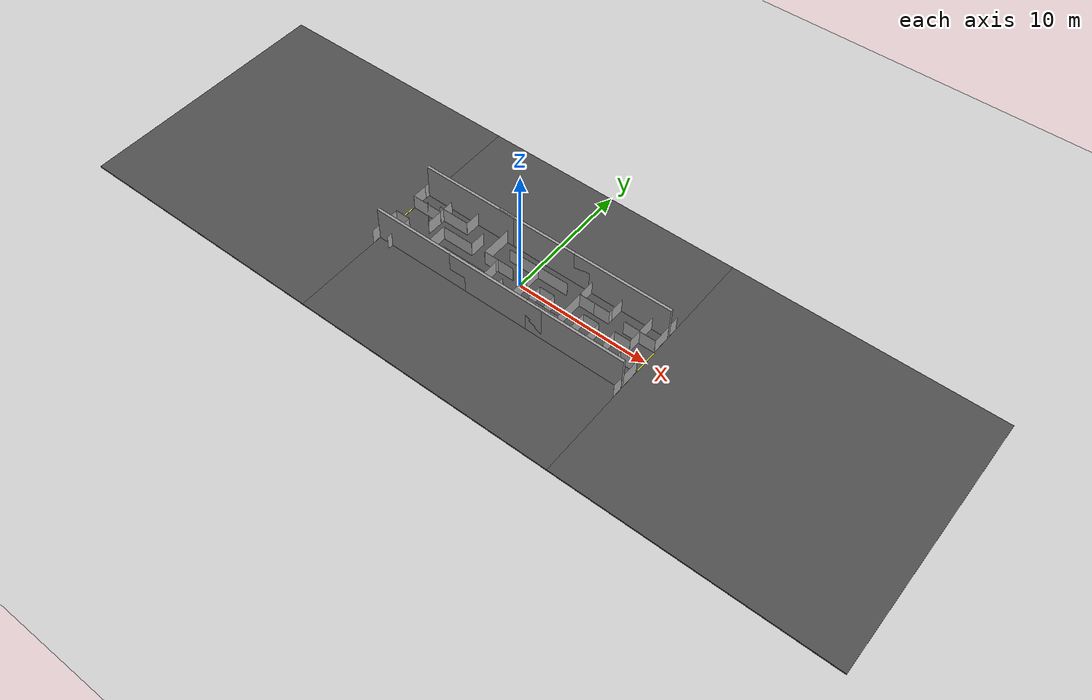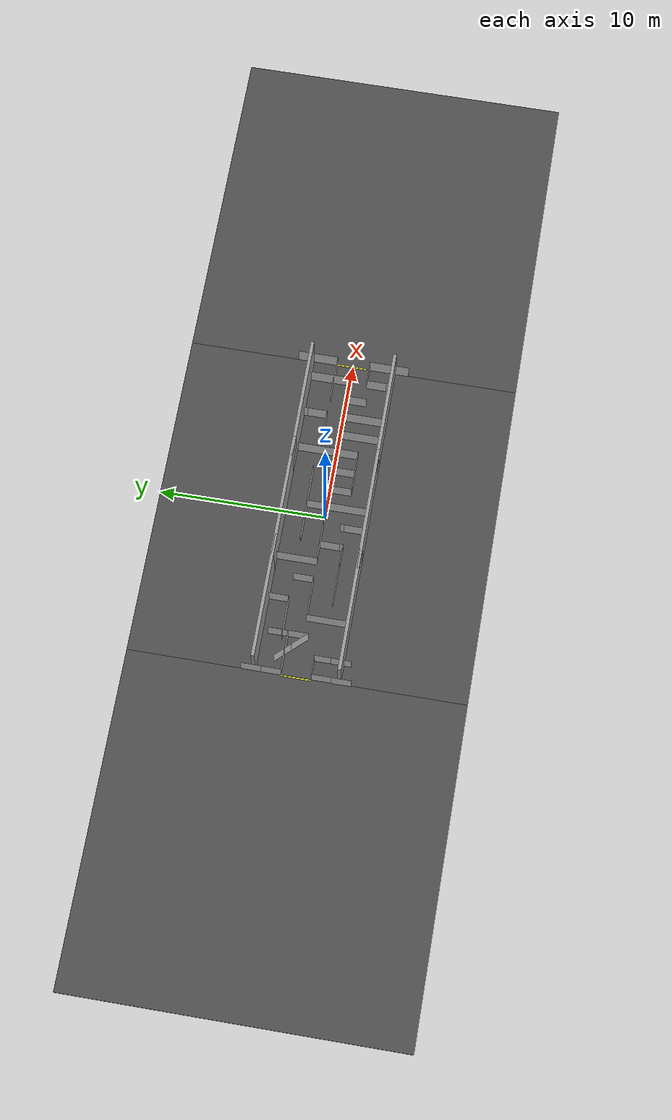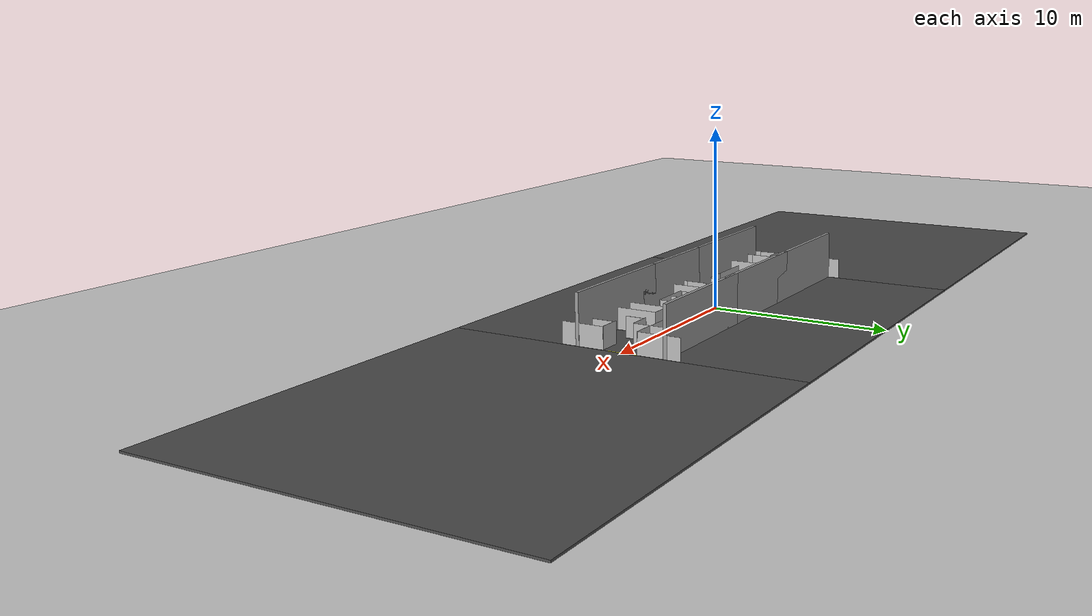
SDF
<sdf version="1.6">
 <world name="default">
  <light name="sun" type="directional">
   <pose>0 0 10 0 -0 0</pose>
   <diffuse>0.8 0.8 0.8 1</diffuse>
   <specular>0.1 0.1 0.1 1</specular>
   <attenuation>
    <range>1000</range>
    <constant>0.9</constant>
    <linear>0.01</linear>
    <quadratic>0.001</quadratic>
   </attenuation>
   <direction>-0.5 0.5 -1</direction>
  </light>
  <model name="ground_plane">
   <static>1</static>
   <link name="link">
    <collision name="collision">
     <geometry><plane><normal>0 0 1</normal><size>100 100</size></plane></geometry>
     <surface><friction><ode><mu>100</mu><mu2>50</mu2></ode></friction></surface>
    </collision>
    <visual name="visual">
     <cast_shadows>0</cast_shadows>
     <geometry><plane><normal>0 0 1</normal><size>100 100</size></plane></geometry>
     <material>
      <script><uri>file://media/materials/scripts/gazebo.material</uri><name>Gazebo/Grey</name></script>
     </material>
    </visual>
   </link>
  </model>
  <gravity>0 0 -9.8</gravity>
  <magnetic_field>6e-06 2.3e-05 -4.2e-05</magnetic_field>
  <atmosphere type="adiabatic"/>
  <physics name="default_physics" default="0" type="ode">
   <max_step_size>0.001</max_step_size>
   <real_time_factor>1</real_time_factor>
   <real_time_update_rate>1000</real_time_update_rate>
  </physics>
  <scene><ambient>0.4 0.4 0.4 1</ambient><background>0.7 0.7 0.7 1</background><shadows>1</shadows></scene>
  <spherical_coordinates>
   <surface_model>EARTH_WGS84</surface_model>
   <latitude_deg>0</latitude_deg>
   <longitude_deg>0</longitude_deg>
   <elevation>0</elevation>
   <heading_deg>0</heading_deg>
  </spherical_coordinates>
  <model name="asphalt_plane">
   <static>1</static>
   <link name="link">
    <collision name="collision"><geometry><box><size>20 20 0.1</size></box></geometry></collision>
    <visual name="visual">
     <cast_shadows>0</cast_shadows>
     <geometry><box><size>20 20 0.1</size></box></geometry>
     <material>
      <script>
       <uri>model://asphalt_plane/materials/scripts</uri>
       <uri>model://asphalt_plane/materials/textures</uri>
       <name>vrc/asphalt</name>
      </script>
     </material>
    </visual>
   </link>
  </model>
  <model name="grey_wall">
   <static>1</static>
   <link name="link">
    <pose>0 0 1.4 0 -0 0</pose>
    <collision name="collision"><geometry><box><size>7.5 0.2 2.8</size></box></geometry></collision>
    <visual name="visual">
     <cast_shadows>0</cast_shadows>
     <geometry><box><size>7.5 0.2 2.8</size></box></geometry>
     <material>
      <script>
       <uri>model://grey_wall/materials/scripts</uri>
       <uri>model://grey_wall/materials/textures</uri>
       <name>vrc/grey_wall</name>
      </script>
     </material>
    </visual>
   </link>
   <pose>-6.25 2.5 0 0 -0 0</pose>
  </model>
  <model name="grey_wall_clone">
   <static>1</static>
   <link name="link">
    <pose>0 0 1.4 0 -0 0</pose>
    <collision name="collision"><geometry><box><size>7.5 0.2 2.8</size></box></geometry></collision>
    <visual name="visual">
     <cast_shadows>0</cast_shadows>
     <geometry><box><size>7.5 0.2 2.8</size></box></geometry>
     <material>
      <script>
       <uri>model://grey_wall/materials/scripts</uri>
       <uri>model://grey_wall/materials/textures</uri>
       <name>vrc/grey_wall</name>
      </script>
     </material>
    </visual>
   </link>
   <pose>0 2.5 0 0 -0 0</pose>
  </model>
  <model name="grey_wall_clone_0">
   <static>1</static>
   <link name="link">
    <pose>0 0 1.4 0 -0 0</pose>
    <collision name="collision"><geometry><box><size>7.5 0.2 2.8</size></box></geometry></collision>
    <visual name="visual">
     <cast_shadows>0</cast_shadows>
     <geometry><box><size>7.5 0.2 2.8</size></box></geometry>
     <material>
      <script>
       <uri>model://grey_wall/materials/scripts</uri>
       <uri>model://grey_wall/materials/textures</uri>
       <name>vrc/grey_wall</name>
      </script>
     </material>
    </visual>
   </link>
   <pose>-6.25 -2.5 0 0 -0 0</pose>
  </model>
  <model name="grey_wall_clone_1">
   <static>1</static>
   <link name="link">
    <pose>0 0 1.4 0 -0 0</pose>
    <collision name="collision"><geometry><box><size>7.5 0.2 2.8</size></box></geometry></collision>
    <visual name="visual">
     <cast_shadows>0</cast_shadows>
     <geometry><box><size>7.5 0.2 2.8</size></box></geometry>
     <material>
      <script>
       <uri>model://grey_wall/materials/scripts</uri>
       <uri>model://grey_wall/materials/textures</uri>
       <name>vrc/grey_wall</name>
      </script>
     </material>
    </visual>
   </link>
   <pose>6.25 2.5 0 0 -0 0</pose>
  </model>
  <model name="grey_wall_clone_2">
   <static>1</static>
   <link name="link">
    <pose>0 0 1.4 0 -0 0</pose>
    <collision name="collision"><geometry><box><size>7.5 0.2 2.8</size></box></geometry></collision>
    <visual name="visual">
     <cast_shadows>0</cast_shadows>
     <geometry><box><size>7.5 0.2 2.8</size></box></geometry>
     <material>
      <script>
       <uri>model://grey_wall/materials/scripts</uri>
       <uri>model://grey_wall/materials/textures</uri>
       <name>vrc/grey_wall</name>
      </script>
     </material>
    </visual>
   </link>
   <pose>0 -2.5 0 0 -0 0</pose>
  </model>
  <model name="grey_wall_clone_3">
   <static>1</static>
   <link name="link">
    <pose>0 0 1.4 0 -0 0</pose>
    <collision name="collision"><geometry><box><size>7.5 0.2 2.8</size></box></geometry></collision>
    <visual name="visual">
     <cast_shadows>0</cast_shadows>
     <geometry><box><size>7.5 0.2 2.8</size></box></geometry>
     <material>
      <script>
       <uri>model://grey_wall/materials/scripts</uri>
       <uri>model://grey_wall/materials/textures</uri>
       <name>vrc/grey_wall</name>
      </script>
     </material>
    </visual>
   </link>
   <pose>6.25 -2.5 0 0 -0 0</pose>
  </model>
  <model name="asphalt_plane_clone">
   <static>1</static>
   <link name="link">
    <collision name="collision"><geometry><box><size>20 20 0.1</size></box></geometry></collision>
    <visual name="visual">
     <cast_shadows>0</cast_shadows>
     <geometry><box><size>20 20 0.1</size></box></geometry>
     <material>
      <script>
       <uri>model://asphalt_plane/materials/scripts</uri>
       <uri>model://asphalt_plane/materials/textures</uri>
       <name>vrc/asphalt</name>
      </script>
     </material>
    </visual>
   </link>
   <pose>-20 0 0 0 -0 0</pose>
  </model>
  <model name="asphalt_plane_clone_0">
   <static>1</static>
   <link name="link">
    <collision name="collision"><geometry><box><size>20 20 0.1</size></box></geometry></collision>
    <visual name="visual">
     <cast_shadows>0</cast_shadows>
     <geometry><box><size>20 20 0.1</size></box></geometry>
     <material>
      <script>
       <uri>model://asphalt_plane/materials/scripts</uri>
       <uri>model://asphalt_plane/materials/textures</uri>
       <name>vrc/asphalt</name>
      </script>
     </material>
    </visual>
   </link>
   <pose>20 0 0 0 -0 0</pose>
  </model>
  <model name="drc_practice_yellow_parking_block">
   <static>1</static>
   <link name="link">
    <visual name="visual">
     <geometry>
      <mesh><uri>model://drc_practice_yellow_parking_block/meshes/block.dae</uri><scale>1 1 1</scale></mesh>
     </geometry>
    </visual>
    <collision name="collision">
     <geometry>
      <mesh><uri>model://drc_practice_yellow_parking_block/meshes/block.dae</uri><scale>1 1 1</scale></mesh>
     </geometry>
    </collision>
   </link>
   <pose>-10.0634 0.022013 -0.051452 0 -0 0</pose>
  </model>
  <model name="drc_practice_yellow_parking_block_clone">
   <static>1</static>
   <link name="link">
    <visual name="visual">
     <geometry>
      <mesh><uri>model://drc_practice_yellow_parking_block/meshes/block.dae</uri><scale>1 1 1</scale></mesh>
     </geometry>
    </visual>
    <collision name="collision">
     <geometry>
      <mesh><uri>model://drc_practice_yellow_parking_block/meshes/block.dae</uri><scale>1 1 1</scale></mesh>
     </geometry>
    </collision>
   </link>
   <pose>10 0.079134 -0.051452 0 -0 0</pose>
  </model>
  <model name="nist_maze_wall_240_clone">
   <static>1</static>
   <link name="nist__maze_wall_240_link">
    <collision name="collision">
     <geometry>
      <mesh><uri>model://nist_maze_wall_240/meshes/nist_maze_wall_240.dae</uri><scale>1 1 1</scale></mesh>
     </geometry>
    </collision>
    <visual name="visual">
     <geometry>
      <mesh><uri>model://nist_maze_wall_240/meshes/nist_maze_wall_240.dae</uri><scale>1 1 1</scale></mesh>
     </geometry>
    </visual>
   </link>
   <pose>9.35922 0.000936 0.65 0.000361 1.57 1.57036</pose>
  </model>
  <model name="nist_maze_wall_120_clone_0">
   <static>1</static>
   <link name="nist_maze_wall_120_link">
    <collision name="collision">
     <geometry>
      <mesh><uri>model://nist_maze_wall_120/meshes/nist_maze_wall_120.dae</uri><scale>1 1 1</scale></mesh>
     </geometry>
    </collision>
    <visual name="visual">
     <geometry>
      <mesh><uri>model://nist_maze_wall_120/meshes/nist_maze_wall_120.dae</uri><scale>1 1 1</scale></mesh>
     </geometry>
    </visual>
   </link>
   <pose>8.15337 -0.609718 0.055 0 -0 0</pose>
  </model>
  <model name="nist_maze_wall_240_clone_clone_0">
   <static>1</static>
   <link name="nist__maze_wall_240_link">
    <collision name="collision">
     <geometry>
      <mesh><uri>model://nist_maze_wall_240/meshes/nist_maze_wall_240.dae</uri><scale>1 1 1</scale></mesh>
     </geometry>
    </collision>
    <visual name="visual">
     <geometry>
      <mesh><uri>model://nist_maze_wall_240/meshes/nist_maze_wall_240.dae</uri><scale>1 1 1</scale></mesh>
     </geometry>
    </visual>
   </link>
   <pose>6.99991 -2.50286 0.649912 0.000404 1.57 1.57039</pose>
  </model>
  <model name="nist_maze_wall_120_clone_clone">
   <static>1</static>
   <link name="nist_maze_wall_120_link">
    <collision name="collision">
     <geometry>
      <mesh><uri>model://nist_maze_wall_120/meshes/nist_maze_wall_120.dae</uri><scale>1 1 1</scale></mesh>
     </geometry>
    </collision>
    <visual name="visual">
     <geometry>
      <mesh><uri>model://nist_maze_wall_120/meshes/nist_maze_wall_120.dae</uri><scale>1 1 1</scale></mesh>
     </geometry>
    </visual>
   </link>
   <pose>6.99451 1.61609 0 0 -0 1.57</pose>
  </model>
  <model name="nist_maze_wall_120_clone_clone_clone">
   <static>1</static>
   <link name="nist_maze_wall_120_link">
    <collision name="collision">
     <geometry>
      <mesh><uri>model://nist_maze_wall_120/meshes/nist_maze_wall_120.dae</uri><scale>1 1 1</scale></mesh>
     </geometry>
    </collision>
    <visual name="visual">
     <geometry>
      <mesh><uri>model://nist_maze_wall_120/meshes/nist_maze_wall_120.dae</uri><scale>1 1 1</scale></mesh>
     </geometry>
    </visual>
   </link>
   <pose>6.99609 1.92363 0 0 -0 1.57</pose>
  </model>
  <model name="nist_maze_wall_120_clone_0_clone">
   <static>1</static>
   <link name="nist_maze_wall_120_link">
    <collision name="collision">
     <geometry>
      <mesh><uri>model://nist_maze_wall_120/meshes/nist_maze_wall_120.dae</uri><scale>1 1 1</scale></mesh>
     </geometry>
    </collision>
    <visual name="visual">
     <geometry>
      <mesh><uri>model://nist_maze_wall_120/meshes/nist_maze_wall_120.dae</uri><scale>1 1 1</scale></mesh>
     </geometry>
    </visual>
   </link>
   <pose>8.14106 0.401155 0.055 0 -0 0</pose>
  </model>
  <model name="nist_maze_wall_120_clone_0_clone_clone">
   <static>1</static>
   <link name="nist_maze_wall_120_link">
    <collision name="collision">
     <geometry>
      <mesh><uri>model://nist_maze_wall_120/meshes/nist_maze_wall_120.dae</uri><scale>1 1 1</scale></mesh>
     </geometry>
    </collision>
    <visual name="visual">
     <geometry>
      <mesh><uri>model://nist_maze_wall_120/meshes/nist_maze_wall_120.dae</uri><scale>1 1 1</scale></mesh>
     </geometry>
    </visual>
   </link>
   <pose>5.80906 0.421371 0.055 0 -0 0</pose>
  </model>
  <model name="nist_maze_wall_120_clone_0_clone_clone_0">
   <static>1</static>
   <link name="nist_maze_wall_120_link">
    <collision name="collision">
     <geometry>
      <mesh><uri>model://nist_maze_wall_120/meshes/nist_maze_wall_120.dae</uri><scale>1 1 1</scale></mesh>
     </geometry>
    </collision>
    <visual name="visual">
     <geometry>
      <mesh><uri>model://nist_maze_wall_120/meshes/nist_maze_wall_120.dae</uri><scale>1 1 1</scale></mesh>
     </geometry>
    </visual>
   </link>
   <pose>5.81728 -0.718374 0.055 0 -0 0</pose>
  </model>
  <model name="nist_maze_wall_120_clone_0_clone_clone_1">
   <static>1</static>
   <link name="nist_maze_wall_120_link">
    <collision name="collision">
     <geometry>
      <mesh><uri>model://nist_maze_wall_120/meshes/nist_maze_wall_120.dae</uri><scale>1 1 1</scale></mesh>
     </geometry>
    </collision>
    <visual name="visual">
     <geometry>
      <mesh><uri>model://nist_maze_wall_120/meshes/nist_maze_wall_120.dae</uri><scale>1 1 1</scale></mesh>
     </geometry>
    </visual>
   </link>
   <pose>4.63983 0.43488 0.055 0 -0 0</pose>
  </model>
  <model name="nist_maze_wall_240_clone_clone_clone_0">
   <static>1</static>
   <link name="nist__maze_wall_240_link">
    <collision name="collision">
     <geometry>
      <mesh><uri>model://nist_maze_wall_240/meshes/nist_maze_wall_240.dae</uri><scale>1 1 1</scale></mesh>
     </geometry>
    </collision>
    <visual name="visual">
     <geometry>
      <mesh><uri>model://nist_maze_wall_240/meshes/nist_maze_wall_240.dae</uri><scale>1 1 1</scale></mesh>
     </geometry>
    </visual>
   </link>
   <pose>4.63861 -0.037915 0.65 0.000404 1.57 1.57039</pose>
  </model>
  <model name="nist_maze_wall_240_clone_clone_0_clone">
   <static>1</static>
   <link name="nist__maze_wall_240_link">
    <collision name="collision">
     <geometry>
      <mesh><uri>model://nist_maze_wall_240/meshes/nist_maze_wall_240.dae</uri><scale>1 1 1</scale></mesh>
     </geometry>
    </collision>
    <visual name="visual">
     <geometry>
      <mesh><uri>model://nist_maze_wall_240/meshes/nist_maze_wall_240.dae</uri><scale>1 1 1</scale></mesh>
     </geometry>
    </visual>
   </link>
   <pose>4.63853 -1.24114 0.65024 0.000405 1.57 1.57039</pose>
  </model>
  <model name="nist_maze_wall_240_clone_0">
   <static>1</static>
   <link name="nist__maze_wall_240_link">
    <collision name="collision">
     <geometry>
      <mesh><uri>model://nist_maze_wall_240/meshes/nist_maze_wall_240.dae</uri><scale>1 1 1</scale></mesh>
     </geometry>
    </collision>
    <visual name="visual">
     <geometry>
      <mesh><uri>model://nist_maze_wall_240/meshes/nist_maze_wall_240.dae</uri><scale>1 1 1</scale></mesh>
     </geometry>
    </visual>
   </link>
   <pose>1.65175 -1.86535 0.65 0.000398 1.57 0</pose>
  </model>
  <model name="nist_maze_wall_120_clone_clone_clone_0">
   <static>1</static>
   <link name="nist_maze_wall_120_link">
    <collision name="collision">
     <geometry>
      <mesh><uri>model://nist_maze_wall_120/meshes/nist_maze_wall_120.dae</uri><scale>1 1 1</scale></mesh>
     </geometry>
    </collision>
    <visual name="visual">
     <geometry>
      <mesh><uri>model://nist_maze_wall_120/meshes/nist_maze_wall_120.dae</uri><scale>1 1 1</scale></mesh>
     </geometry>
    </visual>
   </link>
   <pose>2.24393 -0.66111 0 0 -0 1.57</pose>
  </model>
  <model name="nist_maze_wall_240_clone_clone_0_clone_clone">
   <static>1</static>
   <link name="nist__maze_wall_240_link">
    <collision name="collision">
     <geometry>
      <mesh><uri>model://nist_maze_wall_240/meshes/nist_maze_wall_240.dae</uri><scale>1 1 1</scale></mesh>
     </geometry>
    </collision>
    <visual name="visual">
     <geometry>
      <mesh><uri>model://nist_maze_wall_240/meshes/nist_maze_wall_240.dae</uri><scale>1 1 1</scale></mesh>
     </geometry>
    </visual>
   </link>
   <pose>1.12882 -2.38546 0.65 0.000405 1.57 1.57039</pose>
  </model>
  <model name="nist_maze_wall_120_clone_0_clone_clone_2">
   <static>1</static>
   <link name="nist_maze_wall_120_link">
    <collision name="collision">
     <geometry>
      <mesh><uri>model://nist_maze_wall_120/meshes/nist_maze_wall_120.dae</uri><scale>1 1 1</scale></mesh>
     </geometry>
    </collision>
    <visual name="visual">
     <geometry>
      <mesh><uri>model://nist_maze_wall_120/meshes/nist_maze_wall_120.dae</uri><scale>1 1 1</scale></mesh>
     </geometry>
    </visual>
   </link>
   <pose>2.25121 -0.678284 0.055 0 -0 0</pose>
  </model>
  <model name="nist_maze_wall_120_clone_clone_clone_1">
   <static>1</static>
   <link name="nist_maze_wall_120_link">
    <collision name="collision">
     <geometry>
      <mesh><uri>model://nist_maze_wall_120/meshes/nist_maze_wall_120.dae</uri><scale>1 1 1</scale></mesh>
     </geometry>
    </collision>
    <visual name="visual">
     <geometry>
      <mesh><uri>model://nist_maze_wall_120/meshes/nist_maze_wall_120.dae</uri><scale>1 1 1</scale></mesh>
     </geometry>
    </visual>
   </link>
   <pose>3.44507 -0.679232 0 0 -0 1.57</pose>
  </model>
  <model name="nist_maze_wall_120_clone_clone_clone_1_clone">
   <static>1</static>
   <link name="nist_maze_wall_120_link">
    <collision name="collision">
     <geometry>
      <mesh><uri>model://nist_maze_wall_120/meshes/nist_maze_wall_120.dae</uri><scale>1 1 1</scale></mesh>
     </geometry>
    </collision>
    <visual name="visual">
     <geometry>
      <mesh><uri>model://nist_maze_wall_120/meshes/nist_maze_wall_120.dae</uri><scale>1 1 1</scale></mesh>
     </geometry>
    </visual>
   </link>
   <pose>1.11557 0.620994 0 0 -0 1.57</pose>
  </model>
  <model name="nist_maze_wall_240_clone_0_clone">
   <static>1</static>
   <link name="nist__maze_wall_240_link">
    <collision name="collision">
     <geometry>
      <mesh><uri>model://nist_maze_wall_240/meshes/nist_maze_wall_240.dae</uri><scale>1 1 1</scale></mesh>
     </geometry>
    </collision>
    <visual name="visual">
     <geometry>
      <mesh><uri>model://nist_maze_wall_240/meshes/nist_maze_wall_240.dae</uri><scale>1 1 1</scale></mesh>
     </geometry>
    </visual>
   </link>
   <pose>0.497182 0.620194 0.649969 0.000398 1.57 0</pose>
  </model>
  <model name="nist_maze_wall_240_clone_0_clone_clone">
   <static>1</static>
   <link name="nist__maze_wall_240_link">
    <collision name="collision">
     <geometry>
      <mesh><uri>model://nist_maze_wall_240/meshes/nist_maze_wall_240.dae</uri><scale>1 1 1</scale></mesh>
     </geometry>
    </collision>
    <visual name="visual">
     <geometry>
      <mesh><uri>model://nist_maze_wall_240/meshes/nist_maze_wall_240.dae</uri><scale>1 1 1</scale></mesh>
     </geometry>
    </visual>
   </link>
   <pose>-1.84178 0.603694 0.649969 0.000398 1.57 0</pose>
  </model>
  <model name="nist_maze_wall_240_clone_clone_0_clone_clone_clone">
   <static>1</static>
   <link name="nist__maze_wall_240_link">
    <collision name="collision">
     <geometry>
      <mesh><uri>model://nist_maze_wall_240/meshes/nist_maze_wall_240.dae</uri><scale>1 1 1</scale></mesh>
     </geometry>
    </collision>
    <visual name="visual">
     <geometry>
      <mesh><uri>model://nist_maze_wall_240/meshes/nist_maze_wall_240.dae</uri><scale>1 1 1</scale></mesh>
     </geometry>
    </visual>
   </link>
   <pose>-2.40412 -0.001311 0.65 0.000405 1.57 1.57039</pose>
  </model>
  <model name="nist_maze_wall_240_clone_0_clone_clone_clone">
   <static>1</static>
   <link name="nist__maze_wall_240_link">
    <collision name="collision">
     <geometry>
      <mesh><uri>model://nist_maze_wall_240/meshes/nist_maze_wall_240.dae</uri><scale>1 1 1</scale></mesh>
     </geometry>
    </collision>
    <visual name="visual">
     <geometry>
      <mesh><uri>model://nist_maze_wall_240/meshes/nist_maze_wall_240.dae</uri><scale>1 1 1</scale></mesh>
     </geometry>
    </visual>
   </link>
   <pose>-3.02488 -0.574 0.649969 0.000398 1.57 0</pose>
  </model>
  <model name="nist_maze_wall_120_clone_clone_clone_1_clone_clone">
   <static>1</static>
   <link name="nist_maze_wall_120_link">
    <collision name="collision">
     <geometry>
      <mesh><uri>model://nist_maze_wall_120/meshes/nist_maze_wall_120.dae</uri><scale>1 1 1</scale></mesh>
     </geometry>
    </collision>
    <visual name="visual">
     <geometry>
      <mesh><uri>model://nist_maze_wall_120/meshes/nist_maze_wall_120.dae</uri><scale>1 1 1</scale></mesh>
     </geometry>
    </visual>
   </link>
   <pose>-0.068638 -1.79548 0 0 -0 1.57</pose>
  </model>
  <model name="nist_maze_wall_120_clone_clone_clone_1_clone_clone_clone">
   <static>1</static>
   <link name="nist_maze_wall_120_link">
    <collision name="collision">
     <geometry>
      <mesh><uri>model://nist_maze_wall_120/meshes/nist_maze_wall_120.dae</uri><scale>1 1 1</scale></mesh>
     </geometry>
    </collision>
    <visual name="visual">
     <geometry>
      <mesh><uri>model://nist_maze_wall_120/meshes/nist_maze_wall_120.dae</uri><scale>1 1 1</scale></mesh>
     </geometry>
    </visual>
   </link>
   <pose>-1.30048 -0.574261 0 0 -0 1.57</pose>
  </model>
  <model name="nist_maze_wall_120_clone_clone_clone_1_clone_clone_clone_0">
   <static>1</static>
   <link name="nist_maze_wall_120_link">
    <collision name="collision">
     <geometry>
      <mesh><uri>model://nist_maze_wall_120/meshes/nist_maze_wall_120.dae</uri><scale>1 1 1</scale></mesh>
     </geometry>
    </collision>
    <visual name="visual">
     <geometry>
      <mesh><uri>model://nist_maze_wall_120/meshes/nist_maze_wall_120.dae</uri><scale>1 1 1</scale></mesh>
     </geometry>
    </visual>
   </link>
   <pose>-0.065097 -1.57509 0 0 -0 1.57</pose>
  </model>
  <model name="nist_maze_wall_120_clone_clone_clone_1_clone_clone_clone_1">
   <static>1</static>
   <link name="nist_maze_wall_120_link">
    <collision name="collision">
     <geometry>
      <mesh><uri>model://nist_maze_wall_120/meshes/nist_maze_wall_120.dae</uri><scale>1 1 1</scale></mesh>
     </geometry>
    </collision>
    <visual name="visual">
     <geometry>
      <mesh><uri>model://nist_maze_wall_120/meshes/nist_maze_wall_120.dae</uri><scale>1 1 1</scale></mesh>
     </geometry>
    </visual>
   </link>
   <pose>-1.29531 -0.759617 0 0 -0 1.57</pose>
  </model>
  <model name="nist_maze_wall_120_clone_0_clone_clone_2_clone">
   <static>1</static>
   <link name="nist_maze_wall_120_link">
    <collision name="collision">
     <geometry>
      <mesh><uri>model://nist_maze_wall_120/meshes/nist_maze_wall_120.dae</uri><scale>1 1 1</scale></mesh>
     </geometry>
    </collision>
    <visual name="visual">
     <geometry>
      <mesh><uri>model://nist_maze_wall_120/meshes/nist_maze_wall_120.dae</uri><scale>1 1 1</scale></mesh>
     </geometry>
    </visual>
   </link>
   <pose>-2.52326 -1.94011 0.055 0 -0 0</pose>
  </model>
  <model name="nist_maze_wall_240_clone_0_clone_clone_clone_clone">
   <static>1</static>
   <link name="nist__maze_wall_240_link">
    <collision name="collision">
     <geometry>
      <mesh><uri>model://nist_maze_wall_240/meshes/nist_maze_wall_240.dae</uri><scale>1 1 1</scale></mesh>
     </geometry>
    </collision>
    <visual name="visual">
     <geometry>
      <mesh><uri>model://nist_maze_wall_240/meshes/nist_maze_wall_240.dae</uri><scale>1 1 1</scale></mesh>
     </geometry>
    </visual>
   </link>
   <pose>-5.49697 -1.94212 0.649969 0.000398 1.57 0</pose>
  </model>
  <model name="nist_maze_wall_240_clone_clone_0_clone_clone_clone_clone">
   <static>1</static>
   <link name="nist__maze_wall_240_link">
    <collision name="collision">
     <geometry>
      <mesh><uri>model://nist_maze_wall_240/meshes/nist_maze_wall_240.dae</uri><scale>1 1 1</scale></mesh>
     </geometry>
    </collision>
    <visual name="visual">
     <geometry>
      <mesh><uri>model://nist_maze_wall_240/meshes/nist_maze_wall_240.dae</uri><scale>1 1 1</scale></mesh>
     </geometry>
    </visual>
   </link>
   <pose>-5.94014 -2.39243 0.65 0.000406 1.57 1.57039</pose>
  </model>
  <model name="nist_maze_wall_240_clone_0_clone_clone_clone_clone_clone">
   <static>1</static>
   <link name="nist__maze_wall_240_link">
    <collision name="collision">
     <geometry>
      <mesh><uri>model://nist_maze_wall_240/meshes/nist_maze_wall_240.dae</uri><scale>1 1 1</scale></mesh>
     </geometry>
    </collision>
    <visual name="visual">
     <geometry>
      <mesh><uri>model://nist_maze_wall_240/meshes/nist_maze_wall_240.dae</uri><scale>1 1 1</scale></mesh>
     </geometry>
    </visual>
   </link>
   <pose>-6.53648 -0.592101 0.649969 0.000398 1.57 0</pose>
  </model>
  <model name="nist_maze_wall_120_clone_clone_clone_1_clone_clone_clone_2">
   <static>1</static>
   <link name="nist_maze_wall_120_link">
    <collision name="collision">
     <geometry>
      <mesh><uri>model://nist_maze_wall_120/meshes/nist_maze_wall_120.dae</uri><scale>1 1 1</scale></mesh>
     </geometry>
    </collision>
    <visual name="visual">
     <geometry>
      <mesh><uri>model://nist_maze_wall_120/meshes/nist_maze_wall_120.dae</uri><scale>1 1 1</scale></mesh>
     </geometry>
    </visual>
   </link>
   <pose>-3.52538 0.604655 0 0 -0 1.57</pose>
  </model>
  <model name="nist_maze_wall_120_clone_clone_clone_1_clone_clone_clone_2_clone">
   <static>1</static>
   <link name="nist_maze_wall_120_link">
    <collision name="collision">
     <geometry>
      <mesh><uri>model://nist_maze_wall_120/meshes/nist_maze_wall_120.dae</uri><scale>1 1 1</scale></mesh>
     </geometry>
    </collision>
    <visual name="visual">
     <geometry>
      <mesh><uri>model://nist_maze_wall_120/meshes/nist_maze_wall_120.dae</uri><scale>1 1 1</scale></mesh>
     </geometry>
    </visual>
   </link>
   <pose>-9.41976 -1.45312 0 0 -0 1.57</pose>
  </model>
  <model name="nist_maze_wall_120_clone_clone_clone_1_clone_clone_clone_2_clone_0">
   <static>1</static>
   <link name="nist_maze_wall_120_link">
    <collision name="collision">
     <geometry>
      <mesh><uri>model://nist_maze_wall_120/meshes/nist_maze_wall_120.dae</uri><scale>1 1 1</scale></mesh>
     </geometry>
    </collision>
    <visual name="visual">
     <geometry>
      <mesh><uri>model://nist_maze_wall_120/meshes/nist_maze_wall_120.dae</uri><scale>1 1 1</scale></mesh>
     </geometry>
    </visual>
   </link>
   <pose>-9.4298 -2.62097 0 0 -0 1.57</pose>
  </model>
  <model name="nist_maze_wall_120_clone_clone_clone_1_clone_clone_clone_2_clone_1">
   <static>1</static>
   <link name="nist_maze_wall_120_link">
    <collision name="collision">
     <geometry>
      <mesh><uri>model://nist_maze_wall_120/meshes/nist_maze_wall_120.dae</uri><scale>1 1 1</scale></mesh>
     </geometry>
    </collision>
    <visual name="visual">
     <geometry>
      <mesh><uri>model://nist_maze_wall_120/meshes/nist_maze_wall_120.dae</uri><scale>1 1 1</scale></mesh>
     </geometry>
    </visual>
   </link>
   <pose>-9.4215 1.47974 0 0 -0 1.57</pose>
  </model>
  <model name="nist_maze_wall_120_clone_clone_clone_1_clone_clone_clone_2_clone_2">
   <static>1</static>
   <link name="nist_maze_wall_120_link">
    <collision name="collision">
     <geometry>
      <mesh><uri>model://nist_maze_wall_120/meshes/nist_maze_wall_120.dae</uri><scale>1 1 1</scale></mesh>
     </geometry>
    </collision>
    <visual name="visual">
     <geometry>
      <mesh><uri>model://nist_maze_wall_120/meshes/nist_maze_wall_120.dae</uri><scale>1 1 1</scale></mesh>
     </geometry>
    </visual>
   </link>
   <pose>-9.41366 2.65874 0 0 -0 1.57</pose>
  </model>
  <model name="nist_maze_wall_120_clone_clone_clone_1_clone_clone_clone_2_clone_3">
   <static>1</static>
   <link name="nist_maze_wall_120_link">
    <collision name="collision">
     <geometry>
      <mesh><uri>model://nist_maze_wall_120/meshes/nist_maze_wall_120.dae</uri><scale>1 1 1</scale></mesh>
     </geometry>
    </collision>
    <visual name="visual">
     <geometry>
      <mesh><uri>model://nist_maze_wall_120/meshes/nist_maze_wall_120.dae</uri><scale>1 1 1</scale></mesh>
     </geometry>
    </visual>
   </link>
   <pose>-4.95229 1.81977 0 0 -0 1.57</pose>
  </model>
  <model name="nist_maze_wall_240_clone_0_clone_clone_clone_clone_clone_clone">
   <static>1</static>
   <link name="nist__maze_wall_240_link">
    <collision name="collision">
     <geometry>
      <mesh><uri>model://nist_maze_wall_240/meshes/nist_maze_wall_240.dae</uri><scale>1 1 1</scale></mesh>
     </geometry>
    </collision>
    <visual name="visual">
     <geometry>
      <mesh><uri>model://nist_maze_wall_240/meshes/nist_maze_wall_240.dae</uri><scale>1 1 1</scale></mesh>
     </geometry>
    </visual>
   </link>
   <pose>-10.0196 0.298699 0.649969 0.000398 1.57 0</pose>
  </model>
  <model name="nist_maze_wall_240_clone_0_clone_clone_clone_clone_clone_clone_0">
   <static>1</static>
   <link name="nist__maze_wall_240_link">
    <collision name="collision">
     <geometry>
      <mesh><uri>model://nist_maze_wall_240/meshes/nist_maze_wall_240.dae</uri><scale>1 1 1</scale></mesh>
     </geometry>
    </collision>
    <visual name="visual">
     <geometry>
      <mesh><uri>model://nist_maze_wall_240/meshes/nist_maze_wall_240.dae</uri><scale>1 1 1</scale></mesh>
     </geometry>
    </visual>
   </link>
   <pose>-7.96731 0.625781 0.649969 0.000398 1.57 0</pose>
  </model>
  <model name="nist_maze_wall_120_clone_clone_clone_1_clone_clone_clone_2_clone_4">
   <static>1</static>
   <link name="nist_maze_wall_120_link">
    <collision name="collision">
     <geometry>
      <mesh><uri>model://nist_maze_wall_120/meshes/nist_maze_wall_120.dae</uri><scale>1 1 1</scale></mesh>
     </geometry>
    </collision>
    <visual name="visual">
     <geometry>
      <mesh><uri>model://nist_maze_wall_120/meshes/nist_maze_wall_120.dae</uri><scale>1 1 1</scale></mesh>
     </geometry>
    </visual>
   </link>
   <pose>-7.04344 1.48155 0 0 -0 1.57</pose>
  </model>
  <model name="nist_maze_wall_120_clone_clone_clone_1_clone_clone_clone_2_clone_clone">
   <static>1</static>
   <link name="nist_maze_wall_120_link">
    <collision name="collision">
     <geometry>
      <mesh><uri>model://nist_maze_wall_120/meshes/nist_maze_wall_120.dae</uri><scale>1 1 1</scale></mesh>
     </geometry>
    </collision>
    <visual name="visual">
     <geometry>
      <mesh><uri>model://nist_maze_wall_120/meshes/nist_maze_wall_120.dae</uri><scale>1 1 1</scale></mesh>
     </geometry>
    </visual>
   </link>
   <pose>-7.03263 0.302767 0 0 -0 1.57</pose>
  </model>
  <model name="nist_maze_wall_120_clone_0_clone_clone_0_clone_0">
   <static>1</static>
   <link name="nist_maze_wall_120_link">
    <collision name="collision">
     <geometry>
      <mesh><uri>model://nist_maze_wall_120/meshes/nist_maze_wall_120.dae</uri><scale>1 1 1</scale></mesh>
     </geometry>
    </collision>
    <visual name="visual">
     <geometry>
      <mesh><uri>model://nist_maze_wall_120/meshes/nist_maze_wall_120.dae</uri><scale>1 1 1</scale></mesh>
     </geometry>
    </visual>
   </link>
   <pose>-9.47278 -1.467 0.055 0 -0 0</pose>
  </model>
  <model name="nist_maze_wall_120_clone_clone_clone_1_clone_clone_clone_2_clone_3_clone">
   <static>1</static>
   <link name="nist_maze_wall_120_link">
    <collision name="collision">
     <geometry>
      <mesh><uri>model://nist_maze_wall_120/meshes/nist_maze_wall_120.dae</uri><scale>1 1 1</scale></mesh>
     </geometry>
    </collision>
    <visual name="visual">
     <geometry>
      <mesh><uri>model://nist_maze_wall_120/meshes/nist_maze_wall_120.dae</uri><scale>1 1 1</scale></mesh>
     </geometry>
    </visual>
   </link>
   <pose>-8.26571 -1.46832 0 0 -0 1.57</pose>
  </model>
  <model name="nist_maze_wall_120_clone_clone_clone_1_clone_clone_clone_2_clone_3_clone_0">
   <static>1</static>
   <link name="nist_maze_wall_120_link">
    <collision name="collision">
     <geometry>
      <mesh><uri>model://nist_maze_wall_120/meshes/nist_maze_wall_120.dae</uri><scale>1 1 1</scale></mesh>
     </geometry>
    </collision>
    <visual name="visual">
     <geometry>
      <mesh><uri>model://nist_maze_wall_120/meshes/nist_maze_wall_120.dae</uri><scale>1 1 1</scale></mesh>
     </geometry>
    </visual>
   </link>
   <pose>-8.27748 -2.40879 0 0 -0 1.57</pose>
  </model>
  <model name="nist_maze_wall_120_clone_clone_0_clone_clone">
   <static>1</static>
   <link name="nist_maze_wall_120_link">
    <collision name="collision">
     <geometry>
      <mesh><uri>model://nist_maze_wall_120/meshes/nist_maze_wall_120.dae</uri><scale>1 1 1</scale></mesh>
     </geometry>
    </collision>
    <visual name="visual">
     <geometry>
      <mesh><uri>model://nist_maze_wall_120/meshes/nist_maze_wall_120.dae</uri><scale>1 1 1</scale></mesh>
     </geometry>
    </visual>
   </link>
   <pose>-7.62744 0.556197 0.055 0 -0 2.32047</pose>
  </model>
  <model name="nist_maze_wall_120_clone_clone_0_clone_clone_clone">
   <static>1</static>
   <link name="nist_maze_wall_120_link">
    <collision name="collision">
     <geometry>
      <mesh><uri>model://nist_maze_wall_120/meshes/nist_maze_wall_120.dae</uri><scale>1 1 1</scale></mesh>
     </geometry>
    </collision>
    <visual name="visual">
     <geometry>
      <mesh><uri>model://nist_maze_wall_120/meshes/nist_maze_wall_120.dae</uri><scale>1 1 1</scale></mesh>
     </geometry>
    </visual>
   </link>
   <pose>-8.42781 1.41397 0.055 0 -0 2.32047</pose>
  </model>
  <model name="nist_maze_wall_240_clone_clone">
   <static>1</static>
   <link name="nist__maze_wall_240_link">
    <collision name="collision">
     <geometry>
      <mesh><uri>model://nist_maze_wall_240/meshes/nist_maze_wall_240.dae</uri><scale>1 1 1</scale></mesh>
     </geometry>
    </collision>
    <visual name="visual">
     <geometry>
      <mesh><uri>model://nist_maze_wall_240/meshes/nist_maze_wall_240.dae</uri><scale>1 1 1</scale></mesh>
     </geometry>
    </visual>
   </link>
   <pose>10.5871 0.943589 0.65 0.000361 1.57 1.57036</pose>
  </model>
  <model name="nist_maze_wall_240_clone_clone_1">
   <static>1</static>
   <link name="nist__maze_wall_240_link">
    <collision name="collision">
     <geometry>
      <mesh><uri>model://nist_maze_wall_240/meshes/nist_maze_wall_240.dae</uri><scale>1 1 1</scale></mesh>
     </geometry>
    </collision>
    <visual name="visual">
     <geometry>
      <mesh><uri>model://nist_maze_wall_240/meshes/nist_maze_wall_240.dae</uri><scale>1 1 1</scale></mesh>
     </geometry>
    </visual>
   </link>
   <pose>10.5823 -3.39819 0.649841 0.000399 1.57 1.5704</pose>
  </model>
  <model name="nist_maze_wall_120_clone_0_clone_0">
   <static>1</static>
   <link name="nist_maze_wall_120_link">
    <collision name="collision">
     <geometry>
      <mesh><uri>model://nist_maze_wall_120/meshes/nist_maze_wall_120.dae</uri><scale>1 1 1</scale></mesh>
     </geometry>
    </collision>
    <visual name="visual">
     <geometry>
      <mesh><uri>model://nist_maze_wall_120/meshes/nist_maze_wall_120.dae</uri><scale>1 1 1</scale></mesh>
     </geometry>
    </visual>
   </link>
   <pose>9.39629 0.363146 0.055 0 -0 0</pose>
  </model>
  <model name="nist_maze_wall_120_clone_0_clone_1">
   <static>1</static>
   <link name="nist_maze_wall_120_link">
    <collision name="collision">
     <geometry>
      <mesh><uri>model://nist_maze_wall_120/meshes/nist_maze_wall_120.dae</uri><scale>1 1 1</scale></mesh>
     </geometry>
    </collision>
    <visual name="visual">
     <geometry>
      <mesh><uri>model://nist_maze_wall_120/meshes/nist_maze_wall_120.dae</uri><scale>1 1 1</scale></mesh>
     </geometry>
    </visual>
   </link>
   <pose>9.33894 -1.61391 0.055 0 -0 0</pose>
  </model>
  <model name="nist_maze_wall_120_clone_clone_clone_1_clone_0">
   <static>1</static>
   <link name="nist_maze_wall_120_link">
    <collision name="collision">
     <geometry>
      <mesh><uri>model://nist_maze_wall_120/meshes/nist_maze_wall_120.dae</uri><scale>1 1 1</scale></mesh>
     </geometry>
    </collision>
    <visual name="visual">
     <geometry>
      <mesh><uri>model://nist_maze_wall_120/meshes/nist_maze_wall_120.dae</uri><scale>1 1 1</scale></mesh>
     </geometry>
    </visual>
   </link>
   <pose>9.36641 -1.61256 0 0 -0 1.57</pose>
  </model>
  <model name="nist_maze_wall_120_clone_clone_clone_1_clone_1">
   <static>1</static>
   <link name="nist_maze_wall_120_link">
    <collision name="collision">
     <geometry>
      <mesh><uri>model://nist_maze_wall_120/meshes/nist_maze_wall_120.dae</uri><scale>1 1 1</scale></mesh>
     </geometry>
    </collision>
    <visual name="visual">
     <geometry>
      <mesh><uri>model://nist_maze_wall_120/meshes/nist_maze_wall_120.dae</uri><scale>1 1 1</scale></mesh>
     </geometry>
    </visual>
   </link>
   <pose>9.36877 -1.87137 0 0 -0 1.57</pose>
  </model>
  <model name="nist_maze_wall_120_clone_clone_clone_1_clone_1_clone">
   <static>1</static>
   <link name="nist_maze_wall_120_link">
    <collision name="collision">
     <geometry>
      <mesh><uri>model://nist_maze_wall_120/meshes/nist_maze_wall_120.dae</uri><scale>1 1 1</scale></mesh>
     </geometry>
    </collision>
    <visual name="visual">
     <geometry>
      <mesh><uri>model://nist_maze_wall_120/meshes/nist_maze_wall_120.dae</uri><scale>1 1 1</scale></mesh>
     </geometry>
    </visual>
   </link>
   <pose>8.15231 -0.599212 0 0 -0 1.57</pose>
  </model>
  <model name="nist_maze_wall_240_clone_clone_0_clone_0">
   <static>1</static>
   <link name="nist__maze_wall_240_link">
    <collision name="collision">
     <geometry>
      <mesh><uri>model://nist_maze_wall_240/meshes/nist_maze_wall_240.dae</uri><scale>1 1 1</scale></mesh>
     </geometry>
    </collision>
    <visual name="visual">
     <geometry>
      <mesh><uri>model://nist_maze_wall_240/meshes/nist_maze_wall_240.dae</uri><scale>1 1 1</scale></mesh>
     </geometry>
    </visual>
   </link>
   <pose>5.80938 -2.53019 0.649912 0.000404 1.57 1.57039</pose>
  </model>
 </world>
</sdf>
